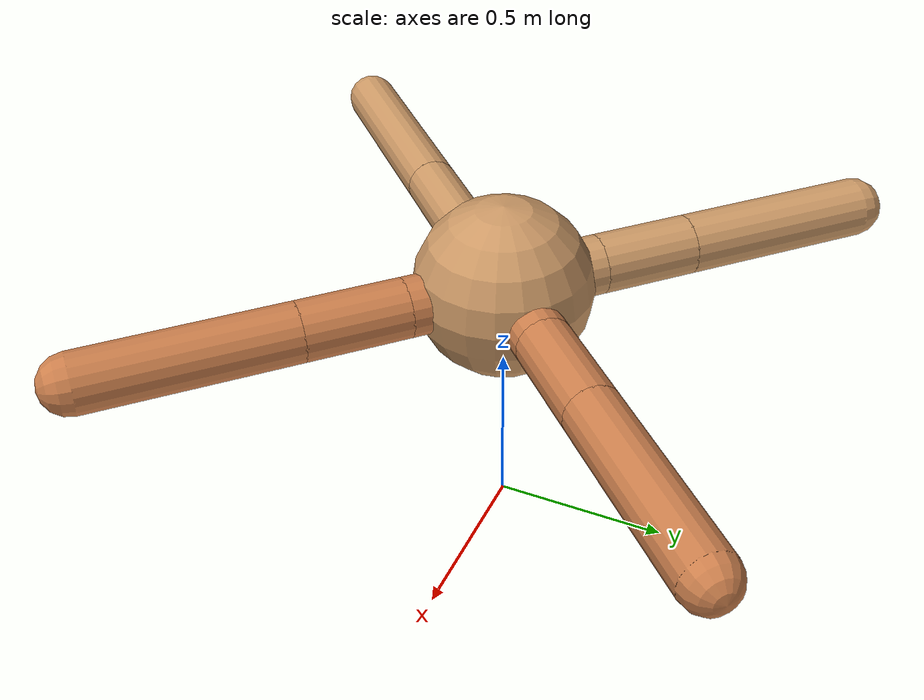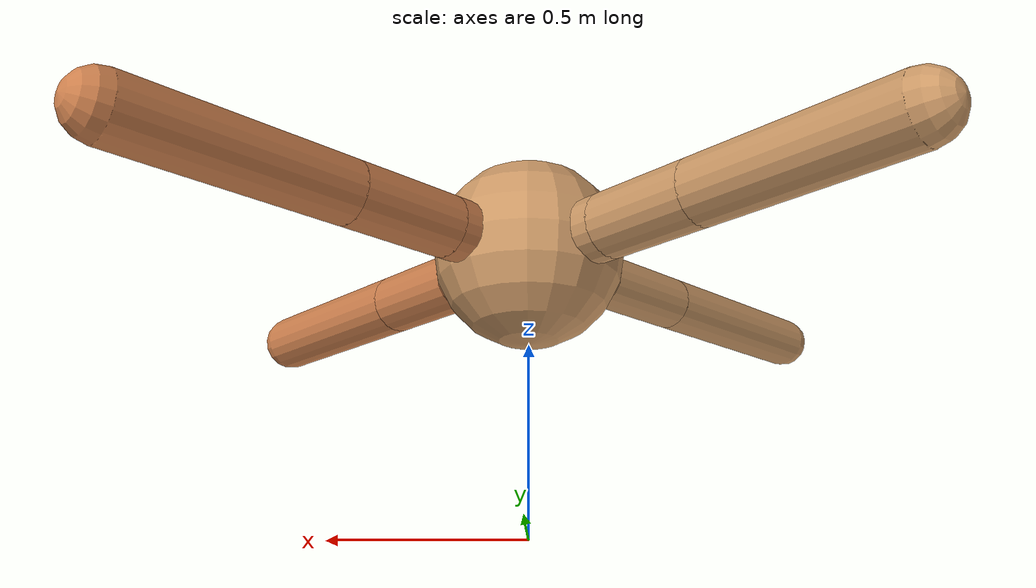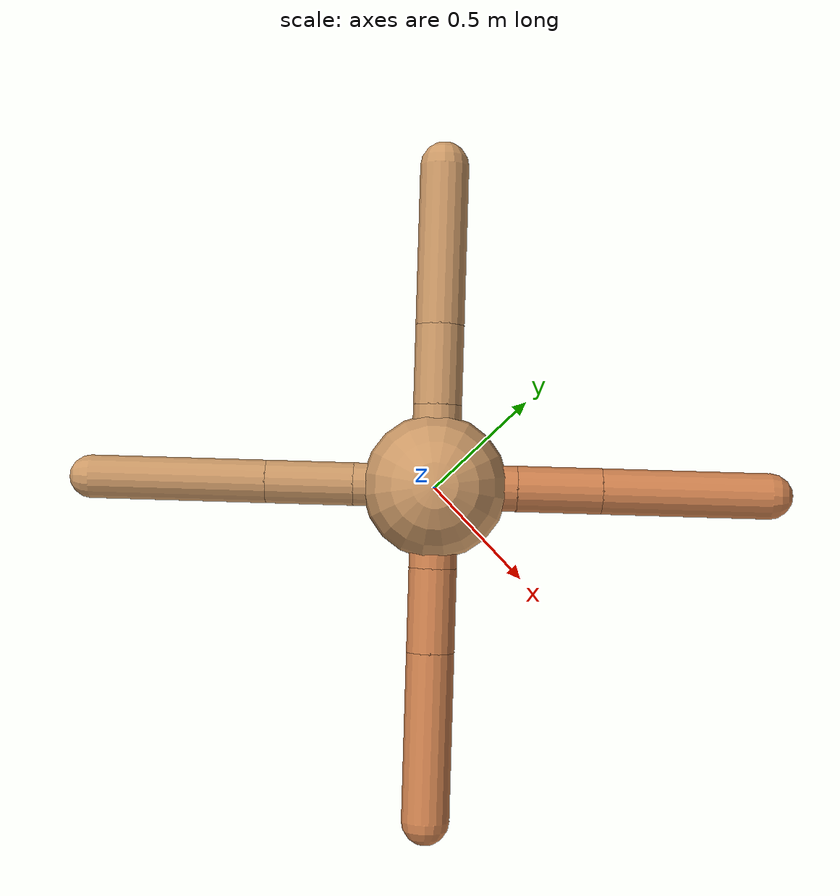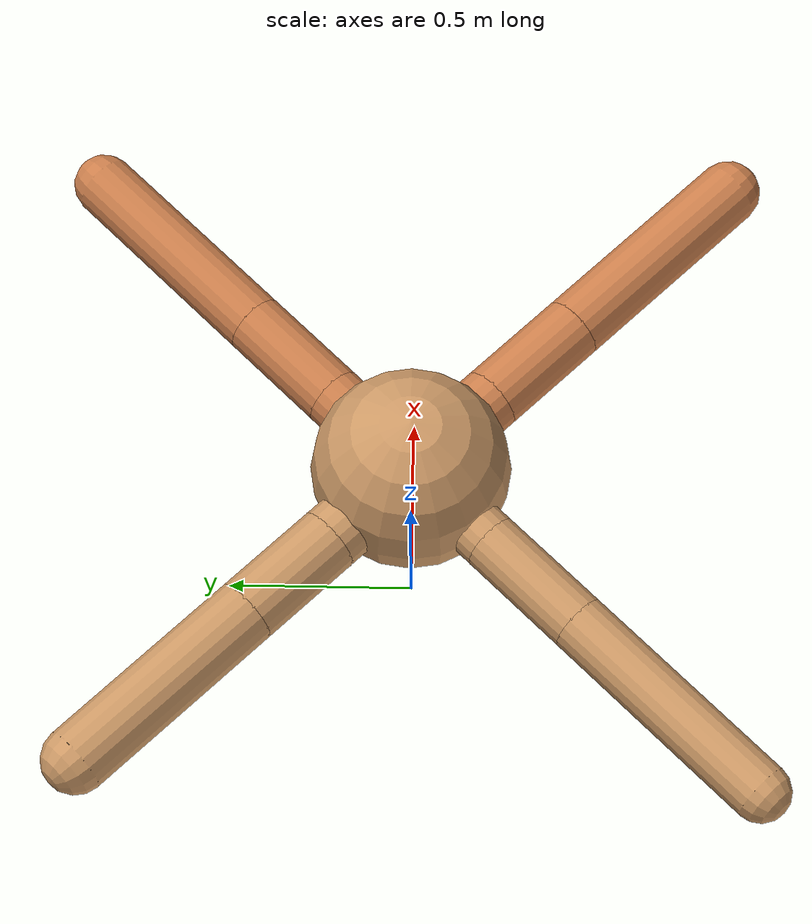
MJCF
<?xml version="1.0" ?>
<mujoco model="ant">

	<compiler angle="degree" coordinate="local" inertiafromgeom="true"/>

	<option integrator="RK4" timestep="0.01"/>

	<custom>

		<numeric data="0.0 0.0 0.55 1.0 0.0 0.0 0.0 0.0 1.0 0.0 -1.0 0.0 -1.0 0.0 1.0" name="init_qpos"/>

	</custom>

	<default>

		<joint armature="1" damping="1" limited="true"/>

		<geom conaffinity="0" condim="3" density="5.0" friction="1.5 0.1 0.1" margin="0.01" rgba="0.8 0.6 0.4 1"/>

	</default>

	<worldbody>

		<body name="torso" pos="0 0 0.75">

			<geom name="torso_geom" pos="0 0 0" size="0.2523819928462024" type="sphere"/>

			<!--joint armature="0" damping="0" limited="false" margin="0.01" name="root" pos="0 0 0" type="free"/-->

			<body name="front_left_leg" pos="0 0 0">

				<geom fromto="0 0 0 0.2 0.2 0" name="aux_1_geom" size="0.08066603463380798" type="capsule" rgba=".8 .5 .3 1"/>

				<body name="aux_1" pos="0.2 0.2 0">

					<joint axis="0 0 1" name="hip_1" pos="0.0 0.0 0.0" range="-40 40" type="hinge"/>

					<geom fromto="0 0 0 0.20722036790432707 0.20722036790432707 0" name="left_leg_geom" size="0.08066603463380798" type="capsule" rgba=".8 .5 .3 1"/>

					<body pos="0.20722036790432707 0.20722036790432707 0" name="front_left_foot">

						<joint axis="-1 1 0" name="ankle_1" pos="0.0 0.0 0.0" range="30 100" type="hinge"/>

						<geom fromto="0 0 0 0.41444073580865415 0.41444073580865415 0" name="left_ankle_geom" size="0.08066603463380798" type="capsule" rgba=".8 .5 .3 1"/>

					</body>

				</body>

			</body>

			<body name="front_right_leg" pos="0 0 0">

				<geom fromto="0 0 0 -0.2 0.2 0" name="aux_2_geom" size="0.0853510193593816" type="capsule"/>

				<body name="aux_2" pos="-0.2 0.2 0">

					<joint axis="0 0 1" name="hip_2" pos="0.0 0.0 0.0" range="-40 40" type="hinge"/>

					<geom fromto="0 0 0 -0.19592448424466935 0.19592448424466935 0" name="right_leg_geom" size="0.0853510193593816" type="capsule"/>

					<body pos="-0.19592448424466935 0.19592448424466935 0" name="front_right_foot">

						<joint axis="1 1 0" name="ankle_2" pos="0.0 0.0 0.0" range="-100 -30" type="hinge"/>

						<geom fromto="0 0 0 -0.3918489684893387 0.3918489684893387 0" name="right_ankle_geom" size="0.0853510193593816" type="capsule"/>

					</body>

				</body>

			</body>

			<body name="left_back_leg" pos="0 0 0">

				<geom fromto="0 0 0 -0.2 -0.2 0" name="aux_3_geom" size="0.07556865844808824" type="capsule"/>

				<body name="aux_3" pos="-0.2 -0.2 0">

					<joint axis="0 0 1" name="hip_3" pos="0.0 0.0 0.0" range="-40 40" type="hinge"/>

					<geom fromto="0 0 0 -0.21454746504712086 -0.21454746504712086 0" name="back_leg_geom" size="0.07556865844808824" type="capsule"/>

					<body pos="-0.21454746504712086 -0.21454746504712086 0" name="left_back_foot">

						<joint axis="-1 1 0" name="ankle_3" pos="0.0 0.0 0.0" range="-100 -30" type="hinge"/>

						<geom fromto="0 0 0 -0.4290949300942417 -0.4290949300942417 0" name="third_ankle_geom" size="0.07556865844808824" type="capsule"/>

					</body>

				</body>

			</body>

			<body name="right_back_leg" pos="0 0 0">

				<geom fromto="0 0 0 0.2 -0.2 0" name="aux_4_geom" size="0.08422224292980822" type="capsule" rgba=".8 .5 .3 1"/>

				<body name="aux_4" pos="0.2 -0.2 0">

					<joint axis="0 0 1" name="hip_4" pos="0.0 0.0 0.0" range="-40 40" type="hinge"/>

					<geom fromto="0 0 0 0.20749759958501493 -0.20749759958501493 0" name="rightback_leg_geom" size="0.08422224292980822" type="capsule" rgba=".8 .5 .3 1"/>

					<body pos="0.20749759958501493 -0.20749759958501493 0" name="right_back_foot">

						<joint axis="1 1 0" name="ankle_4" pos="0.0 0.0 0.0" range="30 100" type="hinge"/>

						<geom fromto="0 0 0 0.41499519917002986 -0.41499519917002986 0" name="fourth_ankle_geom" size="0.08422224292980822" type="capsule" rgba=".8 .5 .3 1"/>

					</body>

				</body>

			</body>

		</body>

	</worldbody>

	<actuator>

		<motor ctrllimited="true" ctrlrange="-1.0 1.0" joint="hip_4" gear="150"/>

		<motor ctrllimited="true" ctrlrange="-1.0 1.0" joint="ankle_4" gear="150"/>

		<motor ctrllimited="true" ctrlrange="-1.0 1.0" joint="hip_1" gear="150"/>

		<motor ctrllimited="true" ctrlrange="-1.0 1.0" joint="ankle_1" gear="150"/>

		<motor ctrllimited="true" ctrlrange="-1.0 1.0" joint="hip_2" gear="150"/>

		<motor ctrllimited="true" ctrlrange="-1.0 1.0" joint="ankle_2" gear="150"/>

		<motor ctrllimited="true" ctrlrange="-1.0 1.0" joint="hip_3" gear="150"/>

		<motor ctrllimited="true" ctrlrange="-1.0 1.0" joint="ankle_3" gear="150"/>

	</actuator>

</mujoco>
